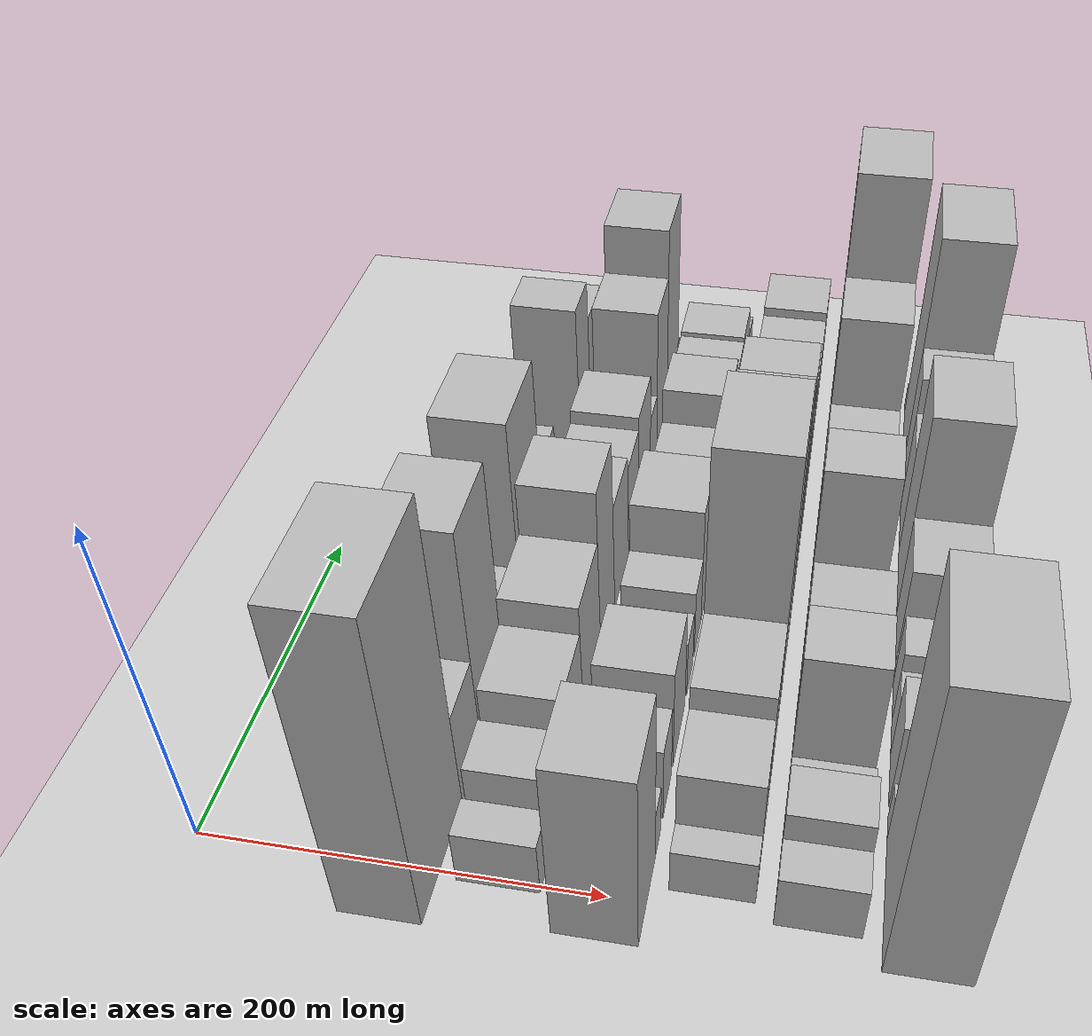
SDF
<sdf version="1.6">
 <world name="default">
  <include>
   <name>ground_plane_2</name>
   <uri>model://HANNAS_ground_plane</uri>
   <pose>100 0 0  0 0 0</pose>
  </include>
  <model name="building_21">
   <static>1</static>
   <pose>100.0000 5.5704 0 0.000000 0.000000 0.000000</pose>
   <link name="link">
    <pose>0 0 100.50 0 0 0</pose>
    <collision name="collision"><geometry><box><size>40.0000 66.9066 201.0000</size></box></geometry></collision>
    <visual name="visual">
     <cast_shadows>0</cast_shadows>
     <geometry><box><size>40.0000 66.9066 201.0000</size></box></geometry>
     <material>
      <script>
       <uri>model://HANNAS_wall/materials/scripts</uri>
       <uri>model://HANNAS_wall/materials/textures</uri>
       <name>vrc/HANNAS_wall</name>
      </script>
     </material>
    </visual>
   </link>
  </model>
  <model name="building_22">
   <static>1</static>
   <pose>100.0000 56.5066 0 0.000000 0.000000 0.000000</pose>
   <link name="link">
    <pose>0 0 31.50 0 0 0</pose>
    <collision name="collision"><geometry><box><size>40.0000 34.9657 63.0000</size></box></geometry></collision>
    <visual name="visual">
     <cast_shadows>0</cast_shadows>
     <geometry><box><size>40.0000 34.9657 63.0000</size></box></geometry>
     <material>
      <script>
       <uri>model://HANNAS_wall/materials/scripts</uri>
       <uri>model://HANNAS_wall/materials/textures</uri>
       <name>vrc/HANNAS_wall</name>
      </script>
     </material>
    </visual>
   </link>
  </model>
  <model name="building_23">
   <static>1</static>
   <pose>100.0000 98.3546 0 0.000000 0.000000 0.000000</pose>
   <link name="link">
    <pose>0 0 73.50 0 0 0</pose>
    <collision name="collision"><geometry><box><size>40.0000 48.7302 147.0000</size></box></geometry></collision>
    <visual name="visual">
     <cast_shadows>0</cast_shadows>
     <geometry><box><size>40.0000 48.7302 147.0000</size></box></geometry>
     <material>
      <script>
       <uri>model://HANNAS_wall/materials/scripts</uri>
       <uri>model://HANNAS_wall/materials/textures</uri>
       <name>vrc/HANNAS_wall</name>
      </script>
     </material>
    </visual>
   </link>
  </model>
  <model name="building_24">
   <static>1</static>
   <pose>100.0000 141.8501 0 0.000000 0.000000 0.000000</pose>
   <link name="link">
    <pose>0 0 24.00 0 0 0</pose>
    <collision name="collision"><geometry><box><size>40.0000 24.2610 48.0000</size></box></geometry></collision>
    <visual name="visual">
     <cast_shadows>0</cast_shadows>
     <geometry><box><size>40.0000 24.2610 48.0000</size></box></geometry>
     <material>
      <script>
       <uri>model://HANNAS_wall/materials/scripts</uri>
       <uri>model://HANNAS_wall/materials/textures</uri>
       <name>vrc/HANNAS_wall</name>
      </script>
     </material>
    </visual>
   </link>
  </model>
  <model name="building_25">
   <static>1</static>
   <pose>100.0000 189.0597 0 0.000000 0.000000 0.000000</pose>
   <link name="link">
    <pose>0 0 69.00 0 0 0</pose>
    <collision name="collision"><geometry><box><size>40.0000 54.1582 138.0000</size></box></geometry></collision>
    <visual name="visual">
     <cast_shadows>0</cast_shadows>
     <geometry><box><size>40.0000 54.1582 138.0000</size></box></geometry>
     <material>
      <script>
       <uri>model://HANNAS_wall/materials/scripts</uri>
       <uri>model://HANNAS_wall/materials/textures</uri>
       <name>vrc/HANNAS_wall</name>
      </script>
     </material>
    </visual>
   </link>
  </model>
  <model name="building_26">
   <static>1</static>
   <pose>100.0000 234.2118 0 0.000000 0.000000 0.000000</pose>
   <link name="link">
    <pose>0 0 33.00 0 0 0</pose>
    <collision name="collision"><geometry><box><size>40.0000 36.1460 66.0000</size></box></geometry></collision>
    <visual name="visual">
     <cast_shadows>0</cast_shadows>
     <geometry><box><size>40.0000 36.1460 66.0000</size></box></geometry>
     <material>
      <script>
       <uri>model://HANNAS_wall/materials/scripts</uri>
       <uri>model://HANNAS_wall/materials/textures</uri>
       <name>vrc/HANNAS_wall</name>
      </script>
     </material>
    </visual>
   </link>
  </model>
  <model name="building_27">
   <static>1</static>
   <pose>100.0000 333.4423 0 0.000000 0.000000 0.000000</pose>
   <link name="link">
    <pose>0 0 51.00 0 0 0</pose>
    <collision name="collision"><geometry><box><size>40.0000 32.7717 102.0000</size></box></geometry></collision>
    <visual name="visual">
     <cast_shadows>0</cast_shadows>
     <geometry><box><size>40.0000 32.7717 102.0000</size></box></geometry>
     <material>
      <script>
       <uri>model://HANNAS_wall/materials/scripts</uri>
       <uri>model://HANNAS_wall/materials/textures</uri>
       <name>vrc/HANNAS_wall</name>
      </script>
     </material>
    </visual>
   </link>
  </model>
  <model name="building_28">
   <static>1</static>
   <pose>100.0000 369.4874 0 0.000000 0.000000 0.000000</pose>
   <link name="link">
    <pose>0 0 37.50 0 0 0</pose>
    <collision name="collision"><geometry><box><size>40.0000 39.3185 75.0000</size></box></geometry></collision>
    <visual name="visual">
     <cast_shadows>0</cast_shadows>
     <geometry><box><size>40.0000 39.3185 75.0000</size></box></geometry>
     <material>
      <script>
       <uri>model://HANNAS_wall/materials/scripts</uri>
       <uri>model://HANNAS_wall/materials/textures</uri>
       <name>vrc/HANNAS_wall</name>
      </script>
     </material>
    </visual>
   </link>
  </model>
  <model name="building_29">
   <static>1</static>
   <pose>100.0000 402.8128 0 0.000000 0.000000 0.000000</pose>
   <link name="link">
    <pose>0 0 24.00 0 0 0</pose>
    <collision name="collision"><geometry><box><size>40.0000 27.3323 48.0000</size></box></geometry></collision>
    <visual name="visual">
     <cast_shadows>0</cast_shadows>
     <geometry><box><size>40.0000 27.3323 48.0000</size></box></geometry>
     <material>
      <script>
       <uri>model://HANNAS_wall/materials/scripts</uri>
       <uri>model://HANNAS_wall/materials/textures</uri>
       <name>vrc/HANNAS_wall</name>
      </script>
     </material>
    </visual>
   </link>
  </model>
  <model name="building_64">
   <static>1</static>
   <pose>149.0000 6.7519 0 0.000000 0.000000 0.000000</pose>
   <link name="link">
    <pose>0 0 18.00 0 0 0</pose>
    <collision name="collision"><geometry><box><size>40.0000 19.8753 36.0000</size></box></geometry></collision>
    <visual name="visual">
     <cast_shadows>0</cast_shadows>
     <geometry><box><size>40.0000 19.8753 36.0000</size></box></geometry>
     <material>
      <script>
       <uri>model://HANNAS_wall/materials/scripts</uri>
       <uri>model://HANNAS_wall/materials/textures</uri>
       <name>vrc/HANNAS_wall</name>
      </script>
     </material>
    </visual>
   </link>
  </model>
  <model name="building_65">
   <static>1</static>
   <pose>149.0000 36.0463 0 0.000000 0.000000 0.000000</pose>
   <link name="link">
    <pose>0 0 25.50 0 0 0</pose>
    <collision name="collision"><geometry><box><size>40.0000 28.7135 51.0000</size></box></geometry></collision>
    <visual name="visual">
     <cast_shadows>0</cast_shadows>
     <geometry><box><size>40.0000 28.7135 51.0000</size></box></geometry>
     <material>
      <script>
       <uri>model://HANNAS_wall/materials/scripts</uri>
       <uri>model://HANNAS_wall/materials/textures</uri>
       <name>vrc/HANNAS_wall</name>
      </script>
     </material>
    </visual>
   </link>
  </model>
  <model name="building_66">
   <static>1</static>
   <pose>149.0000 74.0706 0 0.000000 0.000000 0.000000</pose>
   <link name="link">
    <pose>0 0 34.50 0 0 0</pose>
    <collision name="collision"><geometry><box><size>40.0000 41.3352 69.0000</size></box></geometry></collision>
    <visual name="visual">
     <cast_shadows>0</cast_shadows>
     <geometry><box><size>40.0000 41.3352 69.0000</size></box></geometry>
     <material>
      <script>
       <uri>model://HANNAS_wall/materials/scripts</uri>
       <uri>model://HANNAS_wall/materials/textures</uri>
       <name>vrc/HANNAS_wall</name>
      </script>
     </material>
    </visual>
   </link>
  </model>
  <model name="building_67">
   <static>1</static>
   <pose>149.0000 117.2238 0 0.000000 0.000000 0.000000</pose>
   <link name="link">
    <pose>0 0 43.50 0 0 0</pose>
    <collision name="collision"><geometry><box><size>40.0000 44.9713 87.0000</size></box></geometry></collision>
    <visual name="visual">
     <cast_shadows>0</cast_shadows>
     <geometry><box><size>40.0000 44.9713 87.0000</size></box></geometry>
     <material>
      <script>
       <uri>model://HANNAS_wall/materials/scripts</uri>
       <uri>model://HANNAS_wall/materials/textures</uri>
       <name>vrc/HANNAS_wall</name>
      </script>
     </material>
    </visual>
   </link>
  </model>
  <model name="building_68">
   <static>1</static>
   <pose>149.0000 159.1819 0 0.000000 0.000000 0.000000</pose>
   <link name="link">
    <pose>0 0 60.00 0 0 0</pose>
    <collision name="collision"><geometry><box><size>40.0000 38.9449 120.0000</size></box></geometry></collision>
    <visual name="visual">
     <cast_shadows>0</cast_shadows>
     <geometry><box><size>40.0000 38.9449 120.0000</size></box></geometry>
     <material>
      <script>
       <uri>model://HANNAS_wall/materials/scripts</uri>
       <uri>model://HANNAS_wall/materials/textures</uri>
       <name>vrc/HANNAS_wall</name>
      </script>
     </material>
    </visual>
   </link>
  </model>
  <model name="building_69">
   <static>1</static>
   <pose>149.0000 200.0035 0 0.000000 0.000000 0.000000</pose>
   <link name="link">
    <pose>0 0 37.50 0 0 0</pose>
    <collision name="collision"><geometry><box><size>40.0000 42.6982 75.0000</size></box></geometry></collision>
    <visual name="visual">
     <cast_shadows>0</cast_shadows>
     <geometry><box><size>40.0000 42.6982 75.0000</size></box></geometry>
     <material>
      <script>
       <uri>model://HANNAS_wall/materials/scripts</uri>
       <uri>model://HANNAS_wall/materials/textures</uri>
       <name>vrc/HANNAS_wall</name>
      </script>
     </material>
    </visual>
   </link>
  </model>
  <model name="building_70">
   <static>1</static>
   <pose>149.0000 239.1743 0 0.000000 0.000000 0.000000</pose>
   <link name="link">
    <pose>0 0 33.00 0 0 0</pose>
    <collision name="collision"><geometry><box><size>40.0000 35.6436 66.0000</size></box></geometry></collision>
    <visual name="visual">
     <cast_shadows>0</cast_shadows>
     <geometry><box><size>40.0000 35.6436 66.0000</size></box></geometry>
     <material>
      <script>
       <uri>model://HANNAS_wall/materials/scripts</uri>
       <uri>model://HANNAS_wall/materials/textures</uri>
       <name>vrc/HANNAS_wall</name>
      </script>
     </material>
    </visual>
   </link>
  </model>
  <model name="building_71">
   <static>1</static>
   <pose>149.0000 277.1224 0 0.000000 0.000000 0.000000</pose>
   <link name="link">
    <pose>0 0 37.50 0 0 0</pose>
    <collision name="collision"><geometry><box><size>40.0000 40.2526 75.0000</size></box></geometry></collision>
    <visual name="visual">
     <cast_shadows>0</cast_shadows>
     <geometry><box><size>40.0000 40.2526 75.0000</size></box></geometry>
     <material>
      <script>
       <uri>model://HANNAS_wall/materials/scripts</uri>
       <uri>model://HANNAS_wall/materials/textures</uri>
       <name>vrc/HANNAS_wall</name>
      </script>
     </material>
    </visual>
   </link>
  </model>
  <model name="building_72">
   <static>1</static>
   <pose>149.0000 309.7122 0 0.000000 0.000000 0.000000</pose>
   <link name="link">
    <pose>0 0 21.00 0 0 0</pose>
    <collision name="collision"><geometry><box><size>40.0000 24.9270 42.0000</size></box></geometry></collision>
    <visual name="visual">
     <cast_shadows>0</cast_shadows>
     <geometry><box><size>40.0000 24.9270 42.0000</size></box></geometry>
     <material>
      <script>
       <uri>model://HANNAS_wall/materials/scripts</uri>
       <uri>model://HANNAS_wall/materials/textures</uri>
       <name>vrc/HANNAS_wall</name>
      </script>
     </material>
    </visual>
   </link>
  </model>
  <model name="building_73">
   <static>1</static>
   <pose>149.0000 342.3925 0 0.000000 0.000000 0.000000</pose>
   <link name="link">
    <pose>0 0 51.00 0 0 0</pose>
    <collision name="collision"><geometry><box><size>40.0000 40.4336 102.0000</size></box></geometry></collision>
    <visual name="visual">
     <cast_shadows>0</cast_shadows>
     <geometry><box><size>40.0000 40.4336 102.0000</size></box></geometry>
     <material>
      <script>
       <uri>model://HANNAS_wall/materials/scripts</uri>
       <uri>model://HANNAS_wall/materials/textures</uri>
       <name>vrc/HANNAS_wall</name>
      </script>
     </material>
    </visual>
   </link>
  </model>
  <model name="building_74">
   <static>1</static>
   <pose>149.0000 385.5866 0 0.000000 0.000000 0.000000</pose>
   <link name="link">
    <pose>0 0 67.50 0 0 0</pose>
    <collision name="collision"><geometry><box><size>40.0000 45.9545 135.0000</size></box></geometry></collision>
    <visual name="visual">
     <cast_shadows>0</cast_shadows>
     <geometry><box><size>40.0000 45.9545 135.0000</size></box></geometry>
     <material>
      <script>
       <uri>model://HANNAS_wall/materials/scripts</uri>
       <uri>model://HANNAS_wall/materials/textures</uri>
       <name>vrc/HANNAS_wall</name>
      </script>
     </material>
    </visual>
   </link>
  </model>
  <model name="building_75">
   <static>1</static>
   <pose>149.0000 413.0706 0 0.000000 0.000000 0.000000</pose>
   <link name="link">
    <pose>0 0 10.50 0 0 0</pose>
    <collision name="collision"><geometry><box><size>40.0000 9.0136 21.0000</size></box></geometry></collision>
    <visual name="visual">
     <cast_shadows>0</cast_shadows>
     <geometry><box><size>40.0000 9.0136 21.0000</size></box></geometry>
     <material>
      <script>
       <uri>model://HANNAS_wall/materials/scripts</uri>
       <uri>model://HANNAS_wall/materials/textures</uri>
       <name>vrc/HANNAS_wall</name>
      </script>
     </material>
    </visual>
   </link>
  </model>
  <model name="building_108">
   <static>1</static>
   <pose>198.0000 0.9798 0 0.000000 0.000000 0.000000</pose>
   <link name="link">
    <pose>0 0 60.00 0 0 0</pose>
    <collision name="collision"><geometry><box><size>40.0000 45.1944 120.0000</size></box></geometry></collision>
    <visual name="visual">
     <cast_shadows>0</cast_shadows>
     <geometry><box><size>40.0000 45.1944 120.0000</size></box></geometry>
     <material>
      <script>
       <uri>model://HANNAS_wall/materials/scripts</uri>
       <uri>model://HANNAS_wall/materials/textures</uri>
       <name>vrc/HANNAS_wall</name>
      </script>
     </material>
    </visual>
   </link>
  </model>
  <model name="building_109">
   <static>1</static>
   <pose>198.0000 31.9448 0 0.000000 0.000000 0.000000</pose>
   <link name="link">
    <pose>0 0 16.50 0 0 0</pose>
    <collision name="collision"><geometry><box><size>40.0000 16.7356 33.0000</size></box></geometry></collision>
    <visual name="visual">
     <cast_shadows>0</cast_shadows>
     <geometry><box><size>40.0000 16.7356 33.0000</size></box></geometry>
     <material>
      <script>
       <uri>model://HANNAS_wall/materials/scripts</uri>
       <uri>model://HANNAS_wall/materials/textures</uri>
       <name>vrc/HANNAS_wall</name>
      </script>
     </material>
    </visual>
   </link>
  </model>
  <model name="building_110">
   <static>1</static>
   <pose>198.0000 59.3342 0 0.000000 0.000000 0.000000</pose>
   <link name="link">
    <pose>0 0 25.50 0 0 0</pose>
    <collision name="collision"><geometry><box><size>40.0000 26.0433 51.0000</size></box></geometry></collision>
    <visual name="visual">
     <cast_shadows>0</cast_shadows>
     <geometry><box><size>40.0000 26.0433 51.0000</size></box></geometry>
     <material>
      <script>
       <uri>model://HANNAS_wall/materials/scripts</uri>
       <uri>model://HANNAS_wall/materials/textures</uri>
       <name>vrc/HANNAS_wall</name>
      </script>
     </material>
    </visual>
   </link>
  </model>
  <model name="building_111">
   <static>1</static>
   <pose>198.0000 97.5024 0 0.000000 0.000000 0.000000</pose>
   <link name="link">
    <pose>0 0 34.50 0 0 0</pose>
    <collision name="collision"><geometry><box><size>40.0000 40.2931 69.0000</size></box></geometry></collision>
    <visual name="visual">
     <cast_shadows>0</cast_shadows>
     <geometry><box><size>40.0000 40.2931 69.0000</size></box></geometry>
     <material>
      <script>
       <uri>model://HANNAS_wall/materials/scripts</uri>
       <uri>model://HANNAS_wall/materials/textures</uri>
       <name>vrc/HANNAS_wall</name>
      </script>
     </material>
    </visual>
   </link>
  </model>
  <model name="building_112">
   <static>1</static>
   <pose>198.0000 134.7721 0 0.000000 0.000000 0.000000</pose>
   <link name="link">
    <pose>0 0 19.50 0 0 0</pose>
    <collision name="collision"><geometry><box><size>40.0000 22.2463 39.0000</size></box></geometry></collision>
    <visual name="visual">
     <cast_shadows>0</cast_shadows>
     <geometry><box><size>40.0000 22.2463 39.0000</size></box></geometry>
     <material>
      <script>
       <uri>model://HANNAS_wall/materials/scripts</uri>
       <uri>model://HANNAS_wall/materials/textures</uri>
       <name>vrc/HANNAS_wall</name>
      </script>
     </material>
    </visual>
   </link>
  </model>
  <model name="building_113">
   <static>1</static>
   <pose>198.0000 164.2398 0 0.000000 0.000000 0.000000</pose>
   <link name="link">
    <pose>0 0 24.00 0 0 0</pose>
    <collision name="collision"><geometry><box><size>40.0000 26.6891 48.0000</size></box></geometry></collision>
    <visual name="visual">
     <cast_shadows>0</cast_shadows>
     <geometry><box><size>40.0000 26.6891 48.0000</size></box></geometry>
     <material>
      <script>
       <uri>model://HANNAS_wall/materials/scripts</uri>
       <uri>model://HANNAS_wall/materials/textures</uri>
       <name>vrc/HANNAS_wall</name>
      </script>
     </material>
    </visual>
   </link>
  </model>
  <model name="building_114">
   <static>1</static>
   <pose>198.0000 200.1584 0 0.000000 0.000000 0.000000</pose>
   <link name="link">
    <pose>0 0 40.50 0 0 0</pose>
    <collision name="collision"><geometry><box><size>40.0000 45.1480 81.0000</size></box></geometry></collision>
    <visual name="visual">
     <cast_shadows>0</cast_shadows>
     <geometry><box><size>40.0000 45.1480 81.0000</size></box></geometry>
     <material>
      <script>
       <uri>model://HANNAS_wall/materials/scripts</uri>
       <uri>model://HANNAS_wall/materials/textures</uri>
       <name>vrc/HANNAS_wall</name>
      </script>
     </material>
    </visual>
   </link>
  </model>
  <model name="building_115">
   <static>1</static>
   <pose>198.0000 227.9738 0 0.000000 0.000000 0.000000</pose>
   <link name="link">
    <pose>0 0 12.00 0 0 0</pose>
    <collision name="collision"><geometry><box><size>40.0000 10.4829 24.0000</size></box></geometry></collision>
    <visual name="visual">
     <cast_shadows>0</cast_shadows>
     <geometry><box><size>40.0000 10.4829 24.0000</size></box></geometry>
     <material>
      <script>
       <uri>model://HANNAS_wall/materials/scripts</uri>
       <uri>model://HANNAS_wall/materials/textures</uri>
       <name>vrc/HANNAS_wall</name>
      </script>
     </material>
    </visual>
   </link>
  </model>
  <model name="building_116">
   <static>1</static>
   <pose>198.0000 243.8494 0 0.000000 0.000000 0.000000</pose>
   <link name="link">
    <pose>0 0 18.00 0 0 0</pose>
    <collision name="collision"><geometry><box><size>40.0000 21.2684 36.0000</size></box></geometry></collision>
    <visual name="visual">
     <cast_shadows>0</cast_shadows>
     <geometry><box><size>40.0000 21.2684 36.0000</size></box></geometry>
     <material>
      <script>
       <uri>model://HANNAS_wall/materials/scripts</uri>
       <uri>model://HANNAS_wall/materials/textures</uri>
       <name>vrc/HANNAS_wall</name>
      </script>
     </material>
    </visual>
   </link>
  </model>
  <model name="building_117">
   <static>1</static>
   <pose>198.0000 271.6576 0 0.000000 0.000000 0.000000</pose>
   <link name="link">
    <pose>0 0 25.50 0 0 0</pose>
    <collision name="collision"><geometry><box><size>40.0000 28.3479 51.0000</size></box></geometry></collision>
    <visual name="visual">
     <cast_shadows>0</cast_shadows>
     <geometry><box><size>40.0000 28.3479 51.0000</size></box></geometry>
     <material>
      <script>
       <uri>model://HANNAS_wall/materials/scripts</uri>
       <uri>model://HANNAS_wall/materials/textures</uri>
       <name>vrc/HANNAS_wall</name>
      </script>
     </material>
    </visual>
   </link>
  </model>
  <model name="building_118">
   <static>1</static>
   <pose>198.0000 304.7454 0 0.000000 0.000000 0.000000</pose>
   <link name="link">
    <pose>0 0 37.50 0 0 0</pose>
    <collision name="collision"><geometry><box><size>40.0000 37.8278 75.0000</size></box></geometry></collision>
    <visual name="visual">
     <cast_shadows>0</cast_shadows>
     <geometry><box><size>40.0000 37.8278 75.0000</size></box></geometry>
     <material>
      <script>
       <uri>model://HANNAS_wall/materials/scripts</uri>
       <uri>model://HANNAS_wall/materials/textures</uri>
       <name>vrc/HANNAS_wall</name>
      </script>
     </material>
    </visual>
   </link>
  </model>
  <model name="building_119">
   <static>1</static>
   <pose>198.0000 341.5169 0 0.000000 0.000000 0.000000</pose>
   <link name="link">
    <pose>0 0 31.50 0 0 0</pose>
    <collision name="collision"><geometry><box><size>40.0000 35.7151 63.0000</size></box></geometry></collision>
    <visual name="visual">
     <cast_shadows>0</cast_shadows>
     <geometry><box><size>40.0000 35.7151 63.0000</size></box></geometry>
     <material>
      <script>
       <uri>model://HANNAS_wall/materials/scripts</uri>
       <uri>model://HANNAS_wall/materials/textures</uri>
       <name>vrc/HANNAS_wall</name>
      </script>
     </material>
    </visual>
   </link>
  </model>
  <model name="building_120">
   <static>1</static>
   <pose>198.0000 376.6212 0 0.000000 0.000000 0.000000</pose>
   <link name="link">
    <pose>0 0 33.00 0 0 0</pose>
    <collision name="collision"><geometry><box><size>40.0000 34.4935 66.0000</size></box></geometry></collision>
    <visual name="visual">
     <cast_shadows>0</cast_shadows>
     <geometry><box><size>40.0000 34.4935 66.0000</size></box></geometry>
     <material>
      <script>
       <uri>model://HANNAS_wall/materials/scripts</uri>
       <uri>model://HANNAS_wall/materials/textures</uri>
       <name>vrc/HANNAS_wall</name>
      </script>
     </material>
    </visual>
   </link>
  </model>
  <model name="building_121">
   <static>1</static>
   <pose>198.0000 406.4166 0 0.000000 0.000000 0.000000</pose>
   <link name="link">
    <pose>0 0 21.00 0 0 0</pose>
    <collision name="collision"><geometry><box><size>40.0000 25.0973 42.0000</size></box></geometry></collision>
    <visual name="visual">
     <cast_shadows>0</cast_shadows>
     <geometry><box><size>40.0000 25.0973 42.0000</size></box></geometry>
     <material>
      <script>
       <uri>model://HANNAS_wall/materials/scripts</uri>
       <uri>model://HANNAS_wall/materials/textures</uri>
       <name>vrc/HANNAS_wall</name>
      </script>
     </material>
    </visual>
   </link>
  </model>
  <model name="building_160">
   <static>1</static>
   <pose>247.0000 16.5467 0 0.000000 0.000000 0.000000</pose>
   <link name="link">
    <pose>0 0 15.00 0 0 0</pose>
    <collision name="collision"><geometry><box><size>40.0000 15.7052 30.0000</size></box></geometry></collision>
    <visual name="visual">
     <cast_shadows>0</cast_shadows>
     <geometry><box><size>40.0000 15.7052 30.0000</size></box></geometry>
     <material>
      <script>
       <uri>model://HANNAS_wall/materials/scripts</uri>
       <uri>model://HANNAS_wall/materials/textures</uri>
       <name>vrc/HANNAS_wall</name>
      </script>
     </material>
    </visual>
   </link>
  </model>
  <model name="building_161">
   <static>1</static>
   <pose>247.0000 43.1501 0 0.000000 0.000000 0.000000</pose>
   <link name="link">
    <pose>0 0 33.00 0 0 0</pose>
    <collision name="collision"><geometry><box><size>40.0000 37.5017 66.0000</size></box></geometry></collision>
    <visual name="visual">
     <cast_shadows>0</cast_shadows>
     <geometry><box><size>40.0000 37.5017 66.0000</size></box></geometry>
     <material>
      <script>
       <uri>model://HANNAS_wall/materials/scripts</uri>
       <uri>model://HANNAS_wall/materials/textures</uri>
       <name>vrc/HANNAS_wall</name>
      </script>
     </material>
    </visual>
   </link>
  </model>
  <model name="building_162">
   <static>1</static>
   <pose>247.0000 84.9950 0 0.000000 0.000000 0.000000</pose>
   <link name="link">
    <pose>0 0 40.50 0 0 0</pose>
    <collision name="collision"><geometry><box><size>40.0000 46.1882 81.0000</size></box></geometry></collision>
    <visual name="visual">
     <cast_shadows>0</cast_shadows>
     <geometry><box><size>40.0000 46.1882 81.0000</size></box></geometry>
     <material>
      <script>
       <uri>model://HANNAS_wall/materials/scripts</uri>
       <uri>model://HANNAS_wall/materials/textures</uri>
       <name>vrc/HANNAS_wall</name>
      </script>
     </material>
    </visual>
   </link>
  </model>
  <model name="building_163">
   <static>1</static>
   <pose>247.0000 135.9696 0 0.000000 0.000000 0.000000</pose>
   <link name="link">
    <pose>0 0 91.50 0 0 0</pose>
    <collision name="collision"><geometry><box><size>40.0000 55.7608 183.0000</size></box></geometry></collision>
    <visual name="visual">
     <cast_shadows>0</cast_shadows>
     <geometry><box><size>40.0000 55.7608 183.0000</size></box></geometry>
     <material>
      <script>
       <uri>model://HANNAS_wall/materials/scripts</uri>
       <uri>model://HANNAS_wall/materials/textures</uri>
       <name>vrc/HANNAS_wall</name>
      </script>
     </material>
    </visual>
   </link>
  </model>
  <model name="building_164">
   <static>1</static>
   <pose>247.0000 189.5366 0 0.000000 0.000000 0.000000</pose>
   <link name="link">
    <pose>0 0 73.50 0 0 0</pose>
    <collision name="collision"><geometry><box><size>40.0000 51.3733 147.0000</size></box></geometry></collision>
    <visual name="visual">
     <cast_shadows>0</cast_shadows>
     <geometry><box><size>40.0000 51.3733 147.0000</size></box></geometry>
     <material>
      <script>
       <uri>model://HANNAS_wall/materials/scripts</uri>
       <uri>model://HANNAS_wall/materials/textures</uri>
       <name>vrc/HANNAS_wall</name>
      </script>
     </material>
    </visual>
   </link>
  </model>
  <model name="building_165">
   <static>1</static>
   <pose>247.0000 236.4533 0 0.000000 0.000000 0.000000</pose>
   <link name="link">
    <pose>0 0 69.00 0 0 0</pose>
    <collision name="collision"><geometry><box><size>40.0000 42.4601 138.0000</size></box></geometry></collision>
    <visual name="visual">
     <cast_shadows>0</cast_shadows>
     <geometry><box><size>40.0000 42.4601 138.0000</size></box></geometry>
     <material>
      <script>
       <uri>model://HANNAS_wall/materials/scripts</uri>
       <uri>model://HANNAS_wall/materials/textures</uri>
       <name>vrc/HANNAS_wall</name>
      </script>
     </material>
    </visual>
   </link>
  </model>
  <model name="building_166">
   <static>1</static>
   <pose>247.0000 276.8266 0 0.000000 0.000000 0.000000</pose>
   <link name="link">
    <pose>0 0 33.00 0 0 0</pose>
    <collision name="collision"><geometry><box><size>40.0000 38.2865 66.0000</size></box></geometry></collision>
    <visual name="visual">
     <cast_shadows>0</cast_shadows>
     <geometry><box><size>40.0000 38.2865 66.0000</size></box></geometry>
     <material>
      <script>
       <uri>model://HANNAS_wall/materials/scripts</uri>
       <uri>model://HANNAS_wall/materials/textures</uri>
       <name>vrc/HANNAS_wall</name>
      </script>
     </material>
    </visual>
   </link>
  </model>
  <model name="building_167">
   <static>1</static>
   <pose>247.0000 309.1084 0 0.000000 0.000000 0.000000</pose>
   <link name="link">
    <pose>0 0 22.50 0 0 0</pose>
    <collision name="collision"><geometry><box><size>40.0000 26.2771 45.0000</size></box></geometry></collision>
    <visual name="visual">
     <cast_shadows>0</cast_shadows>
     <geometry><box><size>40.0000 26.2771 45.0000</size></box></geometry>
     <material>
      <script>
       <uri>model://HANNAS_wall/materials/scripts</uri>
       <uri>model://HANNAS_wall/materials/textures</uri>
       <name>vrc/HANNAS_wall</name>
      </script>
     </material>
    </visual>
   </link>
  </model>
  <model name="building_168">
   <static>1</static>
   <pose>247.0000 340.0244 0 0.000000 0.000000 0.000000</pose>
   <link name="link">
    <pose>0 0 31.50 0 0 0</pose>
    <collision name="collision"><geometry><box><size>40.0000 35.5550 63.0000</size></box></geometry></collision>
    <visual name="visual">
     <cast_shadows>0</cast_shadows>
     <geometry><box><size>40.0000 35.5550 63.0000</size></box></geometry>
     <material>
      <script>
       <uri>model://HANNAS_wall/materials/scripts</uri>
       <uri>model://HANNAS_wall/materials/textures</uri>
       <name>vrc/HANNAS_wall</name>
      </script>
     </material>
    </visual>
   </link>
  </model>
  <model name="building_169">
   <static>1</static>
   <pose>247.0000 374.5164 0 0.000000 0.000000 0.000000</pose>
   <link name="link">
    <pose>0 0 31.50 0 0 0</pose>
    <collision name="collision"><geometry><box><size>40.0000 33.4291 63.0000</size></box></geometry></collision>
    <visual name="visual">
     <cast_shadows>0</cast_shadows>
     <geometry><box><size>40.0000 33.4291 63.0000</size></box></geometry>
     <material>
      <script>
       <uri>model://HANNAS_wall/materials/scripts</uri>
       <uri>model://HANNAS_wall/materials/textures</uri>
       <name>vrc/HANNAS_wall</name>
      </script>
     </material>
    </visual>
   </link>
  </model>
  <model name="building_170">
   <static>1</static>
   <pose>247.0000 411.8291 0 0.000000 0.000000 0.000000</pose>
   <link name="link">
    <pose>0 0 34.50 0 0 0</pose>
    <collision name="collision"><geometry><box><size>40.0000 41.1961 69.0000</size></box></geometry></collision>
    <visual name="visual">
     <cast_shadows>0</cast_shadows>
     <geometry><box><size>40.0000 41.1961 69.0000</size></box></geometry>
     <material>
      <script>
       <uri>model://HANNAS_wall/materials/scripts</uri>
       <uri>model://HANNAS_wall/materials/textures</uri>
       <name>vrc/HANNAS_wall</name>
      </script>
     </material>
    </visual>
   </link>
  </model>
  <model name="building_208">
   <static>1</static>
   <pose>296.0000 10.0629 0 0.000000 0.000000 0.000000</pose>
   <link name="link">
    <pose>0 0 18.00 0 0 0</pose>
    <collision name="collision"><geometry><box><size>40.0000 21.3274 36.0000</size></box></geometry></collision>
    <visual name="visual">
     <cast_shadows>0</cast_shadows>
     <geometry><box><size>40.0000 21.3274 36.0000</size></box></geometry>
     <material>
      <script>
       <uri>model://HANNAS_wall/materials/scripts</uri>
       <uri>model://HANNAS_wall/materials/textures</uri>
       <name>vrc/HANNAS_wall</name>
      </script>
     </material>
    </visual>
   </link>
  </model>
  <model name="building_209">
   <static>1</static>
   <pose>296.0000 34.2738 0 0.000000 0.000000 0.000000</pose>
   <link name="link">
    <pose>0 0 27.00 0 0 0</pose>
    <collision name="collision"><geometry><box><size>40.0000 27.0944 54.0000</size></box></geometry></collision>
    <visual name="visual">
     <cast_shadows>0</cast_shadows>
     <geometry><box><size>40.0000 27.0944 54.0000</size></box></geometry>
     <material>
      <script>
       <uri>model://HANNAS_wall/materials/scripts</uri>
       <uri>model://HANNAS_wall/materials/textures</uri>
       <name>vrc/HANNAS_wall</name>
      </script>
     </material>
    </visual>
   </link>
  </model>
  <model name="building_210">
   <static>1</static>
   <pose>296.0000 57.0096 0 0.000000 0.000000 0.000000</pose>
   <link name="link">
    <pose>0 0 18.00 0 0 0</pose>
    <collision name="collision"><geometry><box><size>40.0000 18.3772 36.0000</size></box></geometry></collision>
    <visual name="visual">
     <cast_shadows>0</cast_shadows>
     <geometry><box><size>40.0000 18.3772 36.0000</size></box></geometry>
     <material>
      <script>
       <uri>model://HANNAS_wall/materials/scripts</uri>
       <uri>model://HANNAS_wall/materials/textures</uri>
       <name>vrc/HANNAS_wall</name>
      </script>
     </material>
    </visual>
   </link>
  </model>
  <model name="building_211">
   <static>1</static>
   <pose>296.0000 90.9270 0 0.000000 0.000000 0.000000</pose>
   <link name="link">
    <pose>0 0 48.00 0 0 0</pose>
    <collision name="collision"><geometry><box><size>40.0000 33.4575 96.0000</size></box></geometry></collision>
    <visual name="visual">
     <cast_shadows>0</cast_shadows>
     <geometry><box><size>40.0000 33.4575 96.0000</size></box></geometry>
     <material>
      <script>
       <uri>model://HANNAS_wall/materials/scripts</uri>
       <uri>model://HANNAS_wall/materials/textures</uri>
       <name>vrc/HANNAS_wall</name>
      </script>
     </material>
    </visual>
   </link>
  </model>
  <model name="building_212">
   <static>1</static>
   <pose>296.0000 123.5554 0 0.000000 0.000000 0.000000</pose>
   <link name="link">
    <pose>0 0 46.50 0 0 0</pose>
    <collision name="collision"><geometry><box><size>40.0000 31.7994 93.0000</size></box></geometry></collision>
    <visual name="visual">
     <cast_shadows>0</cast_shadows>
     <geometry><box><size>40.0000 31.7994 93.0000</size></box></geometry>
     <material>
      <script>
       <uri>model://HANNAS_wall/materials/scripts</uri>
       <uri>model://HANNAS_wall/materials/textures</uri>
       <name>vrc/HANNAS_wall</name>
      </script>
     </material>
    </visual>
   </link>
  </model>
  <model name="building_213">
   <static>1</static>
   <pose>296.0000 161.7653 0 0.000000 0.000000 0.000000</pose>
   <link name="link">
    <pose>0 0 21.00 0 0 0</pose>
    <collision name="collision"><geometry><box><size>40.0000 24.6204 42.0000</size></box></geometry></collision>
    <visual name="visual">
     <cast_shadows>0</cast_shadows>
     <geometry><box><size>40.0000 24.6204 42.0000</size></box></geometry>
     <material>
      <script>
       <uri>model://HANNAS_wall/materials/scripts</uri>
       <uri>model://HANNAS_wall/materials/textures</uri>
       <name>vrc/HANNAS_wall</name>
      </script>
     </material>
    </visual>
   </link>
  </model>
  <model name="building_214">
   <static>1</static>
   <pose>296.0000 180.5453 0 0.000000 0.000000 0.000000</pose>
   <link name="link">
    <pose>0 0 13.50 0 0 0</pose>
    <collision name="collision"><geometry><box><size>40.0000 12.9394 27.0000</size></box></geometry></collision>
    <visual name="visual">
     <cast_shadows>0</cast_shadows>
     <geometry><box><size>40.0000 12.9394 27.0000</size></box></geometry>
     <material>
      <script>
       <uri>model://HANNAS_wall/materials/scripts</uri>
       <uri>model://HANNAS_wall/materials/textures</uri>
       <name>vrc/HANNAS_wall</name>
      </script>
     </material>
    </visual>
   </link>
  </model>
  <model name="building_215">
   <static>1</static>
   <pose>296.0000 207.6858 0 0.000000 0.000000 0.000000</pose>
   <link name="link">
    <pose>0 0 54.00 0 0 0</pose>
    <collision name="collision"><geometry><box><size>40.0000 35.3415 108.0000</size></box></geometry></collision>
    <visual name="visual">
     <cast_shadows>0</cast_shadows>
     <geometry><box><size>40.0000 35.3415 108.0000</size></box></geometry>
     <material>
      <script>
       <uri>model://HANNAS_wall/materials/scripts</uri>
       <uri>model://HANNAS_wall/materials/textures</uri>
       <name>vrc/HANNAS_wall</name>
      </script>
     </material>
    </visual>
   </link>
  </model>
  <model name="building_216">
   <static>1</static>
   <pose>296.0000 251.4775 0 0.000000 0.000000 0.000000</pose>
   <link name="link">
    <pose>0 0 31.50 0 0 0</pose>
    <collision name="collision"><geometry><box><size>40.0000 32.2420 63.0000</size></box></geometry></collision>
    <visual name="visual">
     <cast_shadows>0</cast_shadows>
     <geometry><box><size>40.0000 32.2420 63.0000</size></box></geometry>
     <material>
      <script>
       <uri>model://HANNAS_wall/materials/scripts</uri>
       <uri>model://HANNAS_wall/materials/textures</uri>
       <name>vrc/HANNAS_wall</name>
      </script>
     </material>
    </visual>
   </link>
  </model>
  <model name="building_217">
   <static>1</static>
   <pose>296.0000 284.4163 0 0.000000 0.000000 0.000000</pose>
   <link name="link">
    <pose>0 0 33.00 0 0 0</pose>
    <collision name="collision"><geometry><box><size>40.0000 33.6357 66.0000</size></box></geometry></collision>
    <visual name="visual">
     <cast_shadows>0</cast_shadows>
     <geometry><box><size>40.0000 33.6357 66.0000</size></box></geometry>
     <material>
      <script>
       <uri>model://HANNAS_wall/materials/scripts</uri>
       <uri>model://HANNAS_wall/materials/textures</uri>
       <name>vrc/HANNAS_wall</name>
      </script>
     </material>
    </visual>
   </link>
  </model>
  <model name="building_218">
   <static>1</static>
   <pose>296.0000 322.8624 0 0.000000 0.000000 0.000000</pose>
   <link name="link">
    <pose>0 0 63.00 0 0 0</pose>
    <collision name="collision"><geometry><box><size>40.0000 43.2566 126.0000</size></box></geometry></collision>
    <visual name="visual">
     <cast_shadows>0</cast_shadows>
     <geometry><box><size>40.0000 43.2566 126.0000</size></box></geometry>
     <material>
      <script>
       <uri>model://HANNAS_wall/materials/scripts</uri>
       <uri>model://HANNAS_wall/materials/textures</uri>
       <name>vrc/HANNAS_wall</name>
      </script>
     </material>
    </visual>
   </link>
  </model>
  <model name="building_219">
   <static>1</static>
   <pose>296.0000 373.3120 0 0.000000 0.000000 0.000000</pose>
   <link name="link">
    <pose>0 0 96.00 0 0 0</pose>
    <collision name="collision"><geometry><box><size>40.0000 57.6426 192.0000</size></box></geometry></collision>
    <visual name="visual">
     <cast_shadows>0</cast_shadows>
     <geometry><box><size>40.0000 57.6426 192.0000</size></box></geometry>
     <material>
      <script>
       <uri>model://HANNAS_wall/materials/scripts</uri>
       <uri>model://HANNAS_wall/materials/textures</uri>
       <name>vrc/HANNAS_wall</name>
      </script>
     </material>
    </visual>
   </link>
  </model>
  <model name="building_256">
   <static>1</static>
   <pose>345.0000 18.9092 0 0.000000 0.000000 0.000000</pose>
   <link name="link">
    <pose>0 0 96.00 0 0 0</pose>
    <collision name="collision"><geometry><box><size>40.0000 68.1204 192.0000</size></box></geometry></collision>
    <visual name="visual">
     <cast_shadows>0</cast_shadows>
     <geometry><box><size>40.0000 68.1204 192.0000</size></box></geometry>
     <material>
      <script>
       <uri>model://HANNAS_wall/materials/scripts</uri>
       <uri>model://HANNAS_wall/materials/textures</uri>
       <name>vrc/HANNAS_wall</name>
      </script>
     </material>
    </visual>
   </link>
  </model>
  <model name="building_257">
   <static>1</static>
   <pose>345.0000 59.3348 0 0.000000 0.000000 0.000000</pose>
   <link name="link">
    <pose>0 0 13.50 0 0 0</pose>
    <collision name="collision"><geometry><box><size>40.0000 12.7307 27.0000</size></box></geometry></collision>
    <visual name="visual">
     <cast_shadows>0</cast_shadows>
     <geometry><box><size>40.0000 12.7307 27.0000</size></box></geometry>
     <material>
      <script>
       <uri>model://HANNAS_wall/materials/scripts</uri>
       <uri>model://HANNAS_wall/materials/textures</uri>
       <name>vrc/HANNAS_wall</name>
      </script>
     </material>
    </visual>
   </link>
  </model>
  <model name="building_258">
   <static>1</static>
   <pose>345.0000 87.7543 0 0.000000 0.000000 0.000000</pose>
   <link name="link">
    <pose>0 0 30.00 0 0 0</pose>
    <collision name="collision"><geometry><box><size>40.0000 32.1082 60.0000</size></box></geometry></collision>
    <visual name="visual">
     <cast_shadows>0</cast_shadows>
     <geometry><box><size>40.0000 32.1082 60.0000</size></box></geometry>
     <material>
      <script>
       <uri>model://HANNAS_wall/materials/scripts</uri>
       <uri>model://HANNAS_wall/materials/textures</uri>
       <name>vrc/HANNAS_wall</name>
      </script>
     </material>
    </visual>
   </link>
  </model>
  <model name="building_259">
   <static>1</static>
   <pose>345.0000 114.5731 0 0.000000 0.000000 0.000000</pose>
   <link name="link">
    <pose>0 0 19.50 0 0 0</pose>
    <collision name="collision"><geometry><box><size>40.0000 21.5294 39.0000</size></box></geometry></collision>
    <visual name="visual">
     <cast_shadows>0</cast_shadows>
     <geometry><box><size>40.0000 21.5294 39.0000</size></box></geometry>
     <material>
      <script>
       <uri>model://HANNAS_wall/materials/scripts</uri>
       <uri>model://HANNAS_wall/materials/textures</uri>
       <name>vrc/HANNAS_wall</name>
      </script>
     </material>
    </visual>
   </link>
  </model>
  <model name="building_260">
   <static>1</static>
   <pose>345.0000 138.5692 0 0.000000 0.000000 0.000000</pose>
   <link name="link">
    <pose>0 0 25.50 0 0 0</pose>
    <collision name="collision"><geometry><box><size>40.0000 26.4628 51.0000</size></box></geometry></collision>
    <visual name="visual">
     <cast_shadows>0</cast_shadows>
     <geometry><box><size>40.0000 26.4628 51.0000</size></box></geometry>
     <material>
      <script>
       <uri>model://HANNAS_wall/materials/scripts</uri>
       <uri>model://HANNAS_wall/materials/textures</uri>
       <name>vrc/HANNAS_wall</name>
      </script>
     </material>
    </visual>
   </link>
  </model>
  <model name="building_261">
   <static>1</static>
   <pose>345.0000 155.4111 0 0.000000 0.000000 0.000000</pose>
   <link name="link">
    <pose>0 0 7.50 0 0 0</pose>
    <collision name="collision"><geometry><box><size>40.0000 7.2212 15.0000</size></box></geometry></collision>
    <visual name="visual">
     <cast_shadows>0</cast_shadows>
     <geometry><box><size>40.0000 7.2212 15.0000</size></box></geometry>
     <material>
      <script>
       <uri>model://HANNAS_wall/materials/scripts</uri>
       <uri>model://HANNAS_wall/materials/textures</uri>
       <name>vrc/HANNAS_wall</name>
      </script>
     </material>
    </visual>
   </link>
  </model>
  <model name="building_262">
   <static>1</static>
   <pose>345.0000 179.4412 0 0.000000 0.000000 0.000000</pose>
   <link name="link">
    <pose>0 0 37.50 0 0 0</pose>
    <collision name="collision"><geometry><box><size>40.0000 40.8389 75.0000</size></box></geometry></collision>
    <visual name="visual">
     <cast_shadows>0</cast_shadows>
     <geometry><box><size>40.0000 40.8389 75.0000</size></box></geometry>
     <material>
      <script>
       <uri>model://HANNAS_wall/materials/scripts</uri>
       <uri>model://HANNAS_wall/materials/textures</uri>
       <name>vrc/HANNAS_wall</name>
      </script>
     </material>
    </visual>
   </link>
  </model>
  <model name="building_263">
   <static>1</static>
   <pose>345.0000 226.4981 0 0.000000 0.000000 0.000000</pose>
   <link name="link">
    <pose>0 0 70.50 0 0 0</pose>
    <collision name="collision"><geometry><box><size>40.0000 53.2749 141.0000</size></box></geometry></collision>
    <visual name="visual">
     <cast_shadows>0</cast_shadows>
     <geometry><box><size>40.0000 53.2749 141.0000</size></box></geometry>
     <material>
      <script>
       <uri>model://HANNAS_wall/materials/scripts</uri>
       <uri>model://HANNAS_wall/materials/textures</uri>
       <name>vrc/HANNAS_wall</name>
      </script>
     </material>
    </visual>
   </link>
  </model>
  <model name="building_264">
   <static>1</static>
   <pose>345.0000 272.9177 0 0.000000 0.000000 0.000000</pose>
   <link name="link">
    <pose>0 0 36.00 0 0 0</pose>
    <collision name="collision"><geometry><box><size>40.0000 39.5644 72.0000</size></box></geometry></collision>
    <visual name="visual">
     <cast_shadows>0</cast_shadows>
     <geometry><box><size>40.0000 39.5644 72.0000</size></box></geometry>
     <material>
      <script>
       <uri>model://HANNAS_wall/materials/scripts</uri>
       <uri>model://HANNAS_wall/materials/textures</uri>
       <name>vrc/HANNAS_wall</name>
      </script>
     </material>
    </visual>
   </link>
  </model>
  <model name="building_265">
   <static>1</static>
   <pose>345.0000 308.4312 0 0.000000 0.000000 0.000000</pose>
   <link name="link">
    <pose>0 0 48.00 0 0 0</pose>
    <collision name="collision"><geometry><box><size>40.0000 31.4625 96.0000</size></box></geometry></collision>
    <visual name="visual">
     <cast_shadows>0</cast_shadows>
     <geometry><box><size>40.0000 31.4625 96.0000</size></box></geometry>
     <material>
      <script>
       <uri>model://HANNAS_wall/materials/scripts</uri>
       <uri>model://HANNAS_wall/materials/textures</uri>
       <name>vrc/HANNAS_wall</name>
      </script>
     </material>
    </visual>
   </link>
  </model>
  <model name="building_266">
   <static>1</static>
   <pose>345.0000 355.6140 0 0.000000 0.000000 0.000000</pose>
   <link name="link">
    <pose>0 0 84.00 0 0 0</pose>
    <collision name="collision"><geometry><box><size>40.0000 62.9030 168.0000</size></box></geometry></collision>
    <visual name="visual">
     <cast_shadows>0</cast_shadows>
     <geometry><box><size>40.0000 62.9030 168.0000</size></box></geometry>
     <material>
      <script>
       <uri>model://HANNAS_wall/materials/scripts</uri>
       <uri>model://HANNAS_wall/materials/textures</uri>
       <name>vrc/HANNAS_wall</name>
      </script>
     </material>
    </visual>
   </link>
  </model>
  <model name="building_267">
   <static>1</static>
   <pose>345.0000 391.2500 0 0.000000 0.000000 0.000000</pose>
   <link name="link">
    <pose>0 0 9.00 0 0 0</pose>
    <collision name="collision"><geometry><box><size>40.0000 8.3689 18.0000</size></box></geometry></collision>
    <visual name="visual">
     <cast_shadows>0</cast_shadows>
     <geometry><box><size>40.0000 8.3689 18.0000</size></box></geometry>
     <material>
      <script>
       <uri>model://HANNAS_wall/materials/scripts</uri>
       <uri>model://HANNAS_wall/materials/textures</uri>
       <name>vrc/HANNAS_wall</name>
      </script>
     </material>
    </visual>
   </link>
  </model>
 </world>
</sdf>
